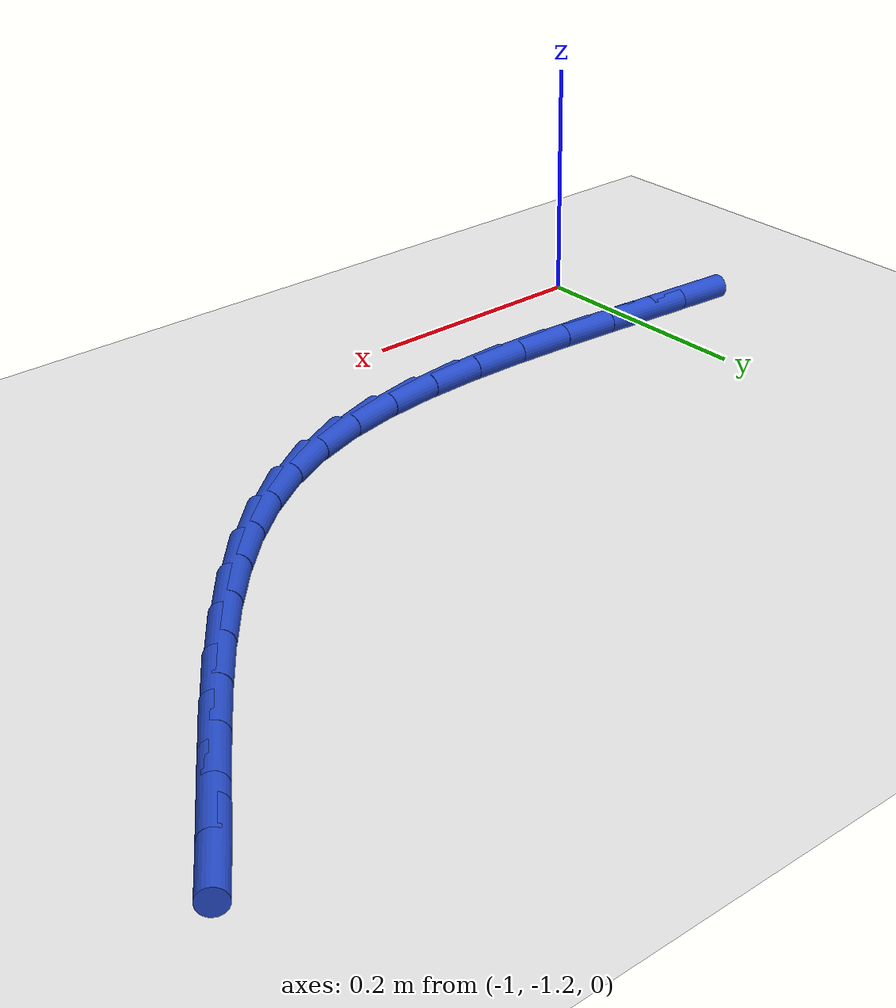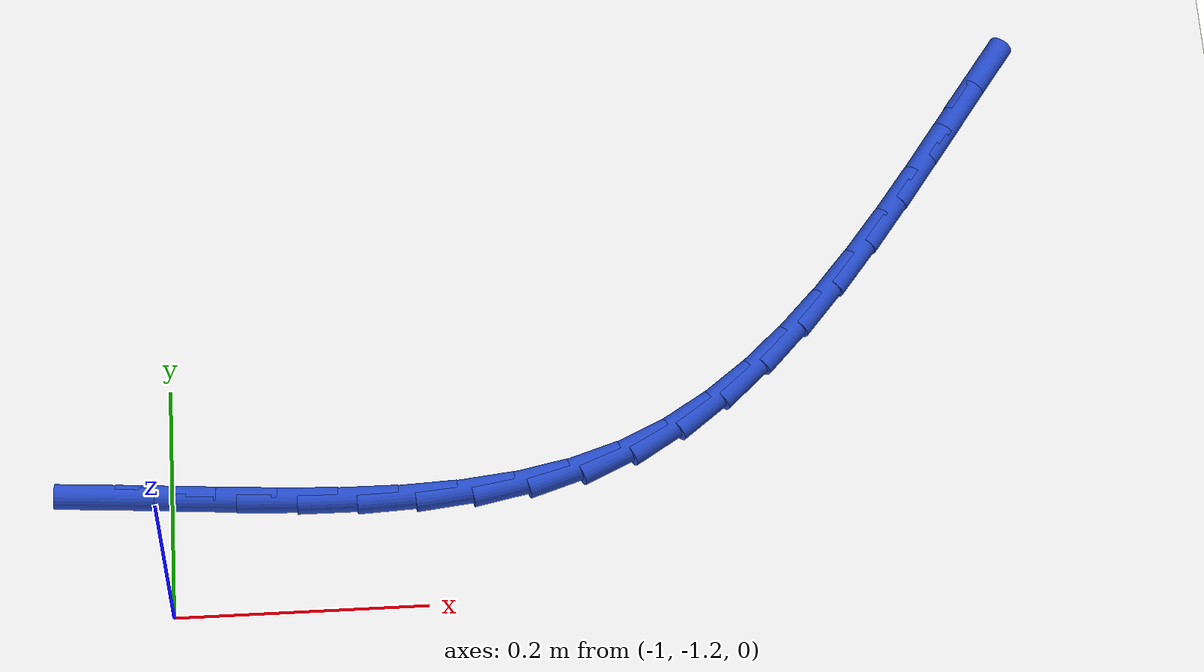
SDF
<sdf version="1.6">
 <world name="default">
  <model name="ground_plane">
   <static>1</static>
   <link name="link">
    <collision name="collision">
     <geometry><plane><normal>0 0 1</normal><size>100 100</size></plane></geometry>
     <surface><friction><ode><mu>100</mu><mu2>50</mu2></ode></friction></surface>
    </collision>
    <visual name="visual">
     <cast_shadows>0</cast_shadows>
     <geometry><plane><normal>0 0 1</normal><size>100 100</size></plane></geometry>
     <material>
      <script><uri>file://media/materials/scripts/gazebo.material</uri><name>Gazebo/WhiteGlow</name></script>
     </material>
    </visual>
   </link>
  </model>
  <model name="line">
   <link name="link_123">
    <pose>-1.0529221714206558 -1.0960569004179075 0.01 0 1.57 -0.07277348778180333</pose>
    <collision name="collision">
     <geometry><cylinder><radius>0.01</radius><length>0.08</length></cylinder></geometry>
    </collision>
    <visual name="visual">
     <material>
      <script><name>Gazebo/Blue</name><uri>file://media/materials/scripts/gazebo.material</uri></script>
     </material>
     <geometry><cylinder><radius>0.01</radius><length>0.08</length></cylinder></geometry>
    </visual>
   </link>
   <link name="link_124">
    <pose>-1.0048728670020302 -1.099559801836212 0.01 0 1.57 -0.07720356190078186</pose>
    <collision name="collision">
     <geometry><cylinder><radius>0.01</radius><length>0.08</length></cylinder></geometry>
    </collision>
    <visual name="visual">
     <material>
      <script><name>Gazebo/Blue</name><uri>file://media/materials/scripts/gazebo.material</uri></script>
     </material>
     <geometry><cylinder><radius>0.01</radius><length>0.08</length></cylinder></geometry>
    </visual>
   </link>
   <link name="link_125">
    <pose>-0.9565696301226694 -1.1032964106080756 0.01 0 1.57 -0.06811118742837162</pose>
    <collision name="collision">
     <geometry><cylinder><radius>0.01</radius><length>0.08</length></cylinder></geometry>
    </collision>
    <visual name="visual">
     <material>
      <script><name>Gazebo/Blue</name><uri>file://media/materials/scripts/gazebo.material</uri></script>
     </material>
     <geometry><cylinder><radius>0.01</radius><length>0.08</length></cylinder></geometry>
    </visual>
   </link>
   <link name="link_126">
    <pose>-0.9083448122224239 -1.106586148971684 0.01 0 1.57 -0.04519211554203356</pose>
    <collision name="collision">
     <geometry><cylinder><radius>0.01</radius><length>0.08</length></cylinder></geometry>
    </collision>
    <visual name="visual">
     <material>
      <script><name>Gazebo/Blue</name><uri>file://media/materials/scripts/gazebo.material</uri></script>
     </material>
     <geometry><cylinder><radius>0.01</radius><length>0.08</length></cylinder></geometry>
    </visual>
   </link>
   <link name="link_127">
    <pose>-0.860530764741148 -1.1087484391652236 0.01 0 1.57 -0.007526037958479634</pose>
    <collision name="collision">
     <geometry><cylinder><radius>0.01</radius><length>0.08</length></cylinder></geometry>
    </collision>
    <visual name="visual">
     <material>
      <script><name>Gazebo/Blue</name><uri>file://media/materials/scripts/gazebo.material</uri></script>
     </material>
     <geometry><cylinder><radius>0.01</radius><length>0.08</length></cylinder></geometry>
    </visual>
   </link>
   <link name="link_128">
    <pose>-0.8134598391186921 -1.1091027034268808 0.01 0 1.57 0.04637000765670856</pose>
    <collision name="collision">
     <geometry><cylinder><radius>0.01</radius><length>0.08</length></cylinder></geometry>
    </collision>
    <visual name="visual">
     <material>
      <script><name>Gazebo/Blue</name><uri>file://media/materials/scripts/gazebo.material</uri></script>
     </material>
     <geometry><cylinder><radius>0.01</radius><length>0.08</length></cylinder></geometry>
    </visual>
   </link>
   <link name="link_129">
    <pose>-0.7674643867949082 -1.1069683639948416 0.01 0 1.57 0.11838977968641326</pose>
    <collision name="collision">
     <geometry><cylinder><radius>0.01</radius><length>0.08</length></cylinder></geometry>
    </collision>
    <visual name="visual">
     <material>
      <script><name>Gazebo/Blue</name><uri>file://media/materials/scripts/gazebo.material</uri></script>
     </material>
     <geometry><cylinder><radius>0.01</radius><length>0.08</length></cylinder></geometry>
    </visual>
   </link>
   <link name="link_130">
    <pose>-0.7228767592096484 -1.1016648431072933 0.01 0 1.57 0.21046139087946278</pose>
    <collision name="collision">
     <geometry><cylinder><radius>0.01</radius><length>0.08</length></cylinder></geometry>
    </collision>
    <visual name="visual">
     <material>
      <script><name>Gazebo/Blue</name><uri>file://media/materials/scripts/gazebo.material</uri></script>
     </material>
     <geometry><cylinder><radius>0.01</radius><length>0.08</length></cylinder></geometry>
    </visual>
   </link>
   <link name="link_131">
    <pose>-0.6800293078027635 -1.0925115630024214 0.01 0 1.57 0.32377930488738954</pose>
    <collision name="collision">
     <geometry><cylinder><radius>0.01</radius><length>0.08</length></cylinder></geometry>
    </collision>
    <visual name="visual">
     <material>
      <script><name>Gazebo/Blue</name><uri>file://media/materials/scripts/gazebo.material</uri></script>
     </material>
     <geometry><cylinder><radius>0.01</radius><length>0.08</length></cylinder></geometry>
    </visual>
   </link>
   <link name="link_132">
    <pose>-0.6392543840141073 -1.0788279459184125 0.01 0 1.57 0.453035742132471</pose>
    <collision name="collision">
     <geometry><cylinder><radius>0.01</radius><length>0.08</length></cylinder></geometry>
    </collision>
    <visual name="visual">
     <material>
      <script><name>Gazebo/Blue</name><uri>file://media/materials/scripts/gazebo.material</uri></script>
     </material>
     <geometry><cylinder><radius>0.01</radius><length>0.08</length></cylinder></geometry>
    </visual>
   </link>
   <link name="link_133">
    <pose>-0.6008020848001012 -1.0601091865289118 0.01 0 1.57 0.5734678319440709</pose>
    <collision name="collision">
     <geometry><cylinder><radius>0.01</radius><length>0.08</length></cylinder></geometry>
    </collision>
    <visual name="visual">
     <material>
      <script><name>Gazebo/Blue</name><uri>file://media/materials/scripts/gazebo.material</uri></script>
     </material>
     <geometry><cylinder><radius>0.01</radius><length>0.08</length></cylinder></geometry>
    </visual>
   </link>
   <link name="link_134">
    <pose>-0.5645325801109076 -1.0366837279419878 0.01 0 1.57 0.676221440087815</pose>
    <collision name="collision">
     <geometry><cylinder><radius>0.01</radius><length>0.08</length></cylinder></geometry>
    </collision>
    <visual name="visual">
     <material>
      <script><name>Gazebo/Blue</name><uri>file://media/materials/scripts/gazebo.material</uri></script>
     </material>
     <geometry><cylinder><radius>0.01</radius><length>0.08</length></cylinder></geometry>
    </visual>
   </link>
   <link name="link_135">
    <pose>-0.530190613176374 -1.0091266725953971 0.01 0 1.57 0.7610048643150867</pose>
    <collision name="collision">
     <geometry><cylinder><radius>0.01</radius><length>0.08</length></cylinder></geometry>
    </collision>
    <visual name="visual">
     <material>
      <script><name>Gazebo/Blue</name><uri>file://media/materials/scripts/gazebo.material</uri></script>
     </material>
     <geometry><cylinder><radius>0.01</radius><length>0.08</length></cylinder></geometry>
    </visual>
   </link>
   <link name="link_136">
    <pose>-0.4975209095513707 -0.9780131606971633 0.01 0 1.57 0.8288630490720164</pose>
    <collision name="collision">
     <geometry><cylinder><radius>0.01</radius><length>0.08</length></cylinder></geometry>
    </collision>
    <visual name="visual">
     <material>
      <script><name>Gazebo/Blue</name><uri>file://media/materials/scripts/gazebo.material</uri></script>
     </material>
     <geometry><cylinder><radius>0.01</radius><length>0.08</length></cylinder></geometry>
    </visual>
   </link>
   <link name="link_137">
    <pose>-0.46626819479076953 -0.9439183324553125 0.01 0 1.57 0.881360372986391</pose>
    <collision name="collision">
     <geometry><cylinder><radius>0.01</radius><length>0.08</length></cylinder></geometry>
    </collision>
    <visual name="visual">
     <material>
      <script><name>Gazebo/Blue</name><uri>file://media/materials/scripts/gazebo.material</uri></script>
     </material>
     <geometry><cylinder><radius>0.01</radius><length>0.08</length></cylinder></geometry>
    </visual>
   </link>
   <link name="link_138">
    <pose>-0.43617719444944075 -0.9074173280778685 0.01 0 1.57 0.9200630822638568</pose>
    <collision name="collision">
     <geometry><cylinder><radius>0.01</radius><length>0.08</length></cylinder></geometry>
    </collision>
    <visual name="visual">
     <material>
      <script><name>Gazebo/Blue</name><uri>file://media/materials/scripts/gazebo.material</uri></script>
     </material>
     <geometry><cylinder><radius>0.01</radius><length>0.08</length></cylinder></geometry>
    </visual>
   </link>
   <link name="link_139">
    <pose>-0.4069926340822549 -0.8690852877728553 0.01 0 1.57 0.946273025899692</pose>
    <collision name="collision">
     <geometry><cylinder><radius>0.01</radius><length>0.08</length></cylinder></geometry>
    </collision>
    <visual name="visual">
     <material>
      <script><name>Gazebo/Blue</name><uri>file://media/materials/scripts/gazebo.material</uri></script>
     </material>
     <geometry><cylinder><radius>0.01</radius><length>0.08</length></cylinder></geometry>
    </visual>
   </link>
   <link name="link_140">
    <pose>-0.3784592392440828 -0.8294973517482975 0.01 0 1.57 0.9609138603806536</pose>
    <collision name="collision">
     <geometry><cylinder><radius>0.01</radius><length>0.08</length></cylinder></geometry>
    </collision>
    <visual name="visual">
     <material>
      <script><name>Gazebo/Blue</name><uri>file://media/materials/scripts/gazebo.material</uri></script>
     </material>
     <geometry><cylinder><radius>0.01</radius><length>0.08</length></cylinder></geometry>
    </visual>
   </link>
   <link name="link_141">
    <pose>-0.3503217354897947 -0.7892286602122186 0.01 0 1.57 0.9644911817865477</pose>
    <collision name="collision">
     <geometry><cylinder><radius>0.01</radius><length>0.08</length></cylinder></geometry>
    </collision>
    <visual name="visual">
     <material>
      <script><name>Gazebo/Blue</name><uri>file://media/materials/scripts/gazebo.material</uri></script>
     </material>
     <geometry><cylinder><radius>0.01</radius><length>0.08</length></cylinder></geometry>
    </visual>
   </link>
   <link name="link_142">
    <pose>-0.3223248483742622 -0.7488543533726447 0.01 0 1.57 0.9570796193301473</pose>
    <collision name="collision">
     <geometry><cylinder><radius>0.01</radius><length>0.08</length></cylinder></geometry>
    </collision>
    <visual name="visual">
     <material>
      <script><name>Gazebo/Blue</name><uri>file://media/materials/scripts/gazebo.material</uri></script>
     </material>
     <geometry><cylinder><radius>0.01</radius><length>0.08</length></cylinder></geometry>
    </visual>
   </link>
  </model>
 </world>
</sdf>
